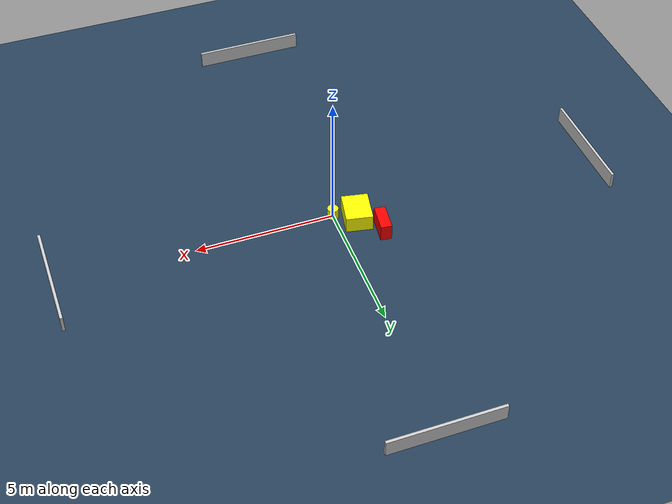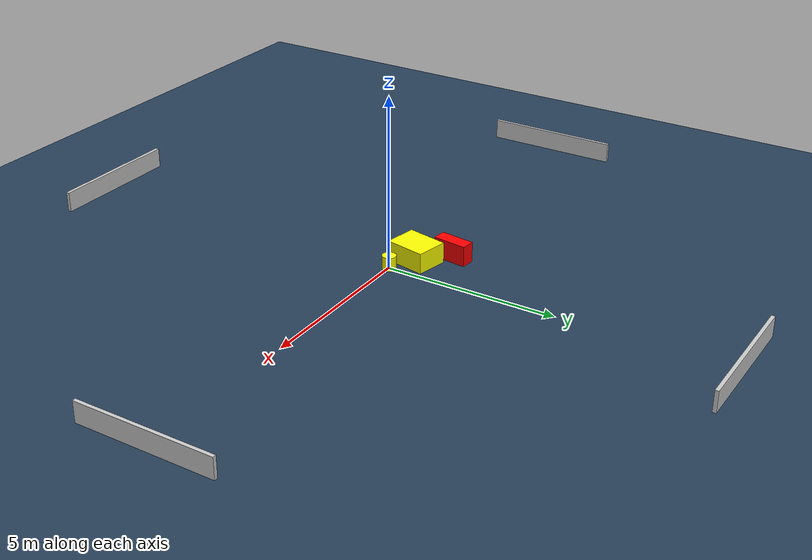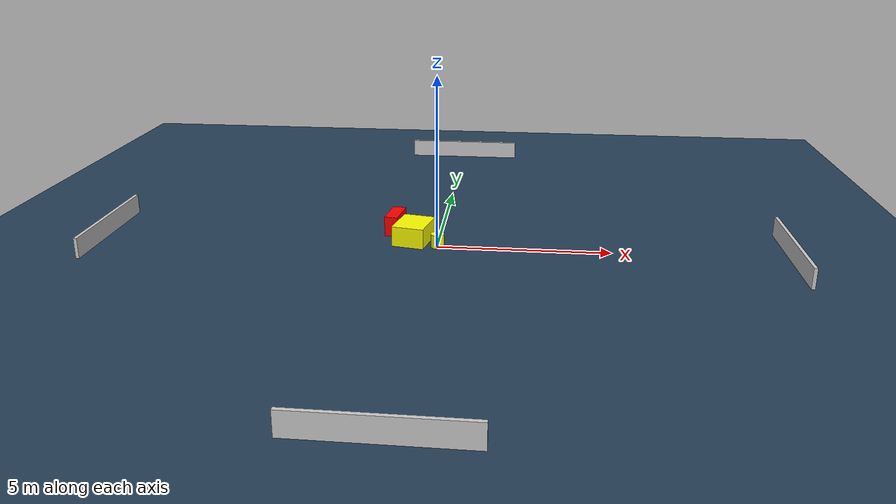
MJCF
<?xml version="1.0" ?>
<mujoco model="generated_environment">
  <option timestep="0.01" integrator="RK4" cone="elliptic"/>
  <default>
    <geom density="1"/>
  </default>
  <asset>
    <texture builtin="gradient" height="3072" name="skybox" rgb1="0.3 0.5 0.7" rgb2="0 0 0" type="skybox" width="512"/>
    <texture builtin="checker" height="300" name="groundplane" rgb1="0.2 0.3 0.4" rgb2="0.1 0.2 0.3" type="2d" width="300"/>
    <material name="groundplane" reflectance="0.2" texrepeat="5 5" texture="groundplane"/>
  </asset>
  <worldbody>
    <light dir="0 0 -1" directional="true" pos="0 0 1.5"/>
    <geom condim="3" friction="0.5 0.005 0.001" material="groundplane" name="floor" pos="0 0 0" size="0 0 0.05" type="plane"/>
    <body name="walls">
      <geom name="wall_1" condim="4" pos="-10.0 0.0 0.3" rgba="0.800000011920929 0.800000011920929 0.800000011920929 1.0" size="0.05 2.0 0.3" type="box"/>
      <geom name="wall_2" condim="4" pos="10.0 0.0 0.3" rgba="0.800000011920929 0.800000011920929 0.800000011920929 1.0" size="0.05 2.0 0.3" type="box"/>
      <geom name="wall_3" condim="4" pos="0.0 -10.0 0.3" rgba="0.800000011920929 0.800000011920929 0.800000011920929 1.0" size="2.0 0.05 0.3" type="box"/>
      <geom name="wall_4" condim="4" pos="0.0 10.0 0.3" rgba="0.800000011920929 0.800000011920929 0.800000011920929 1.0" size="2.0 0.05 0.3" type="box"/>
    </body>
    <body name="robot">
      <joint name="joint_x" type="slide" pos="0 0 0" axis="1 0 0"/>
      <joint name="joint_y" type="slide" pos="0 0 0" axis="0 1 0"/>
      <geom name="robot" type="cylinder" pos="0.0 0.0 0.2" size="0.2 0.2 0.0" mass="5.0" friction="1.0 0.005 0.0001" condim="4" rgba="1.0 1.0 0.0 1.0"/>
    </body>
    <body name="obstacle_1_movable">
      <geom name="obstacle_1_movable" condim="4" pos="-0.7506870951257493 0.39907267167789817 0.3" euler="0 0 258.88384319498516" friction="0.0 0.005 0.001" rgba="1.0 1.0 0.0 1.0" size="0.596496329961653 0.4782180913607346 0.3" type="box" mass="0.1"/>
      <joint type="free"/>
    </body>
    <body name="obstacle_2_static">
      <geom name="obstacle_2_static" condim="4" pos="-1.4159081155865423 1.2009263612019812 0.3" euler="0 0 82.79242449732263" friction="0.0 0.005 0.001" rgba="1.0 0.0 0.0 1.0" size="0.5019469596327568 0.2000675949851482 0.3" type="box"/>
    </body>
  </worldbody>
  <actuator>
    <motor name="actuator_x" joint="joint_x" gear="1" ctrlrange="-1 1"/>
    <motor name="actuator_y" joint="joint_y" gear="1" ctrlrange="-1 1"/>
  </actuator>
</mujoco>
